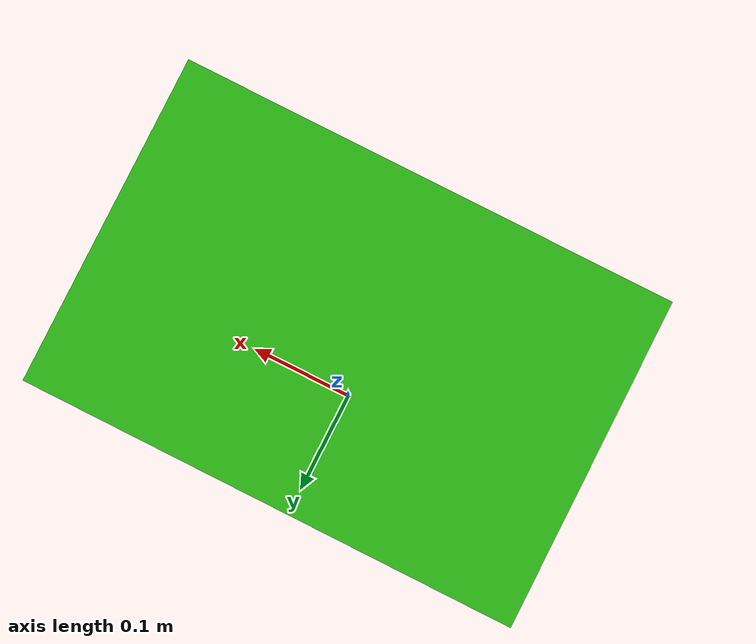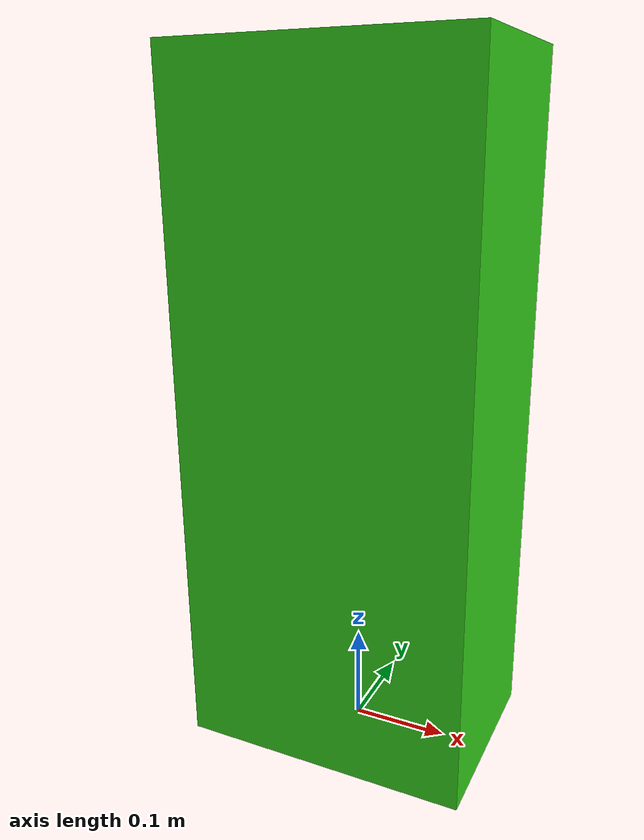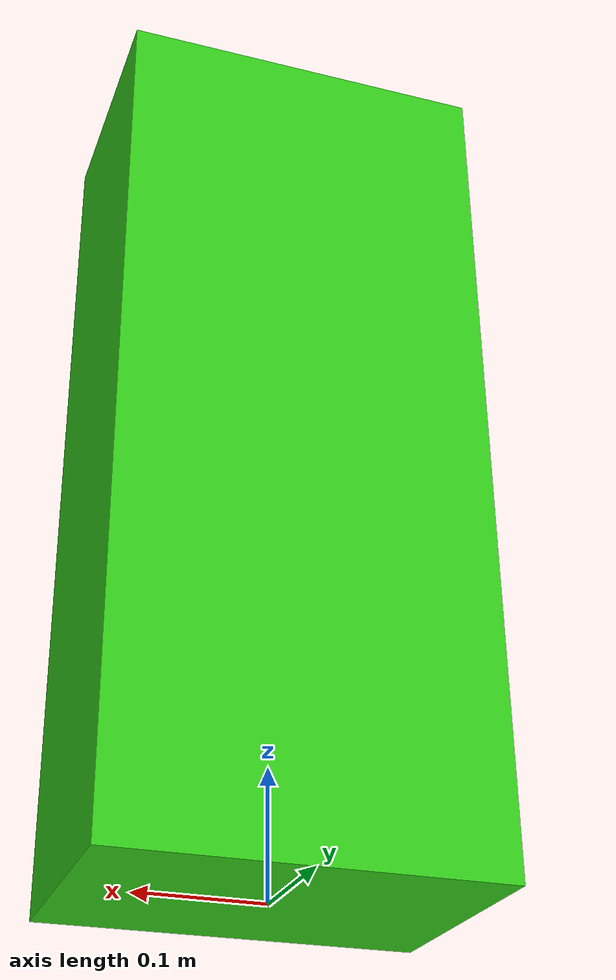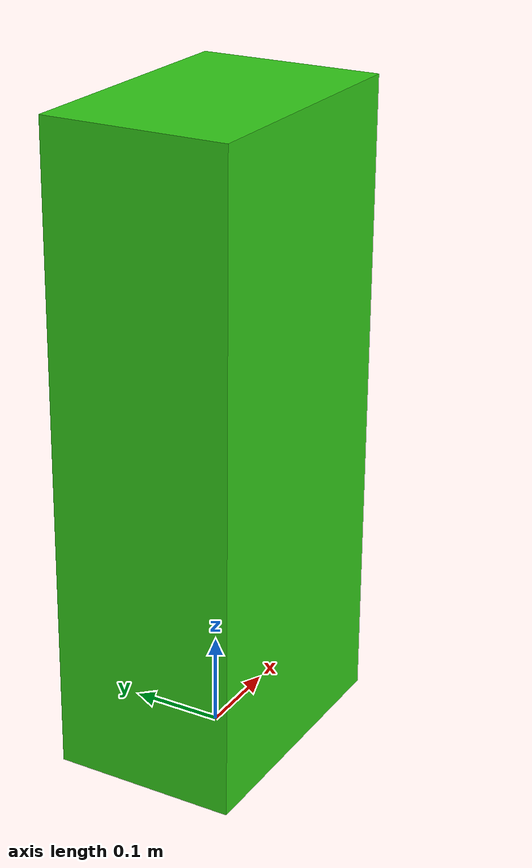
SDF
<sdf version="1.6">
  <model name="obstacle_box">
    <static>false</static> <!-- quan trọng -->
    <link name="link">
      <pose>0 0 0.35 0 0 0</pose>
      <visual name="visual">
        <geometry>
          <box><size>0.3 0.2 0.7</size></box>
        </geometry>
        <material><ambient>0.2 0.8 0.1 1</ambient></material>
      </visual>
      <collision name="collision">
        <geometry>
          <box><size>0.3 0.2 0.7</size></box>
        </geometry>
      </collision>
    </link>
  </model>
</sdf>
